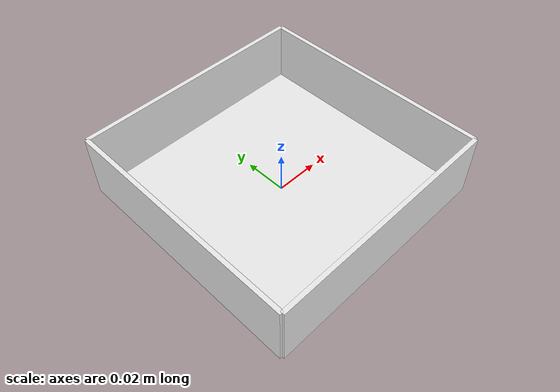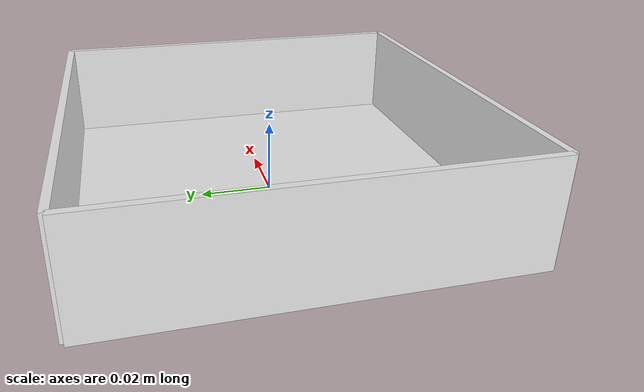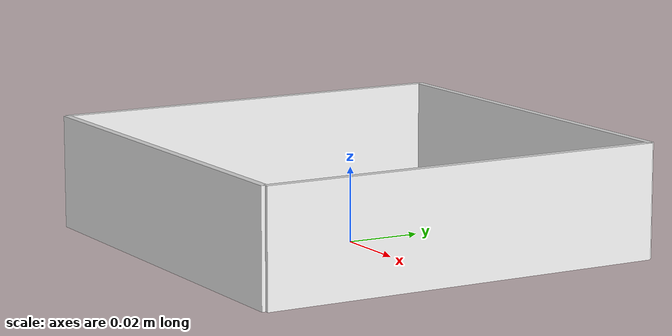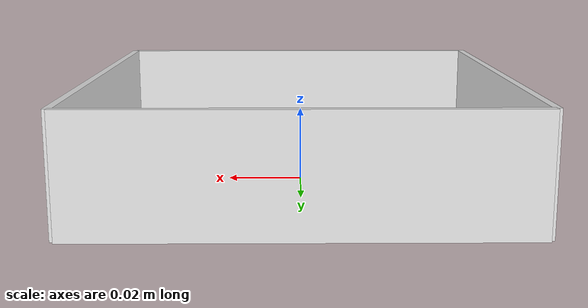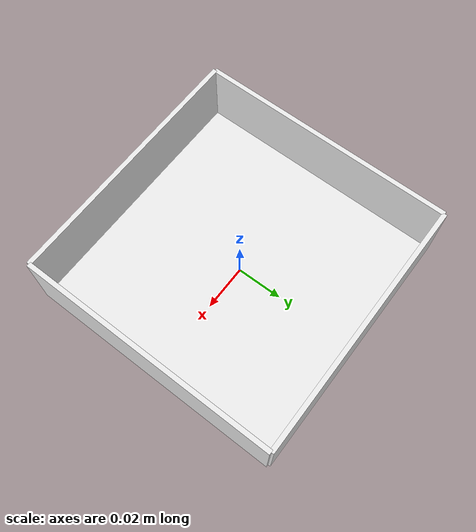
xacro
<?xml version='1.0'?>
<robot name ='workspace' xmlns:xacro="http://www.ros.org/wiki/xacro">

<xacro:property name="width1" value="0.11" />
<xacro:property name="width2" value="0.11" />
<xacro:property name="height1" value="0.03" />
<xacro:property name="height2" value="0.002" />

<link name="world"/>

<joint name = "joint_fix" type = "fixed">
  <parent link="world"/>
  <child link = "bottom"/>
</joint>

<link name ="bottom">
  <collision>
    <origin xyz="0 0 ${height2/2}" rpy="0 0 0"/>
    <geometry>
      <box size="${width1} ${width2} ${height2}"/>
    </geometry>
  </collision>

  <visual>
    <origin xyz="0 0 ${height2/2}" rpy="0 0 0"/>
    <geometry>
      <box size="${width1} ${width2} ${height2}"/>
    </geometry>
  </visual>

  <inertial>
    <origin xyz="0 0 ${height2/2}" rpy="0 0 0" />
    <mass value="0.05" />
    <inertia
      ixx="0.001" ixy="0.0"  ixz="0.0"
      iyy="0.001" iyz="0.0"
      izz="0.001" />
  </inertial>
</link>

<joint name = "left_wall" type = "fixed">
  <parent link="bottom"/>
  <child link = "left"/>
</joint>

<link name = "left">
  <collision>
    <origin xyz="-${width1/2} 0 ${height1/2}" rpy="0 0 0"/>
    <geometry>
      <box size="${height2} ${width2} ${height1}"/>
    </geometry>
  </collision>

  <visual>
    <origin xyz="-${width1/2} 0 ${height1/2}" rpy="0 0 0"/>
    <geometry>
      <box size="${height2} ${width2} ${height1}"/>
    </geometry>
  </visual>

  <inertial>
    <origin xyz="-${width1/2} 0 ${height1/2}" rpy="0 0 0" />
    <mass value="0.05" />
    <inertia
      ixx="0.001" ixy="0.0"  ixz="0.0"
      iyy="0.001" iyz="0.0"
      izz="0.001" />
  </inertial>
</link>

<joint name = "right_wall" type = "fixed">
  <parent link="bottom"/>
  <child link = "right"/>
</joint>

<link name="right">
  <collision>
    <origin xyz="${width1/2} 0 ${height1/2}" rpy="0 0 0"/>
    <geometry>
      <box size="${height2} ${width2} ${height1}"/>
    </geometry>
  </collision>

  <visual>
    <origin xyz="${width1/2} 0 ${height1/2}" rpy="0 0 0"/>
    <geometry>
      <box size="${height2} ${width2} ${height1}"/>
    </geometry>
  </visual>

  <inertial>
    <origin xyz="${width1/2} 0 ${height1/2}" rpy="0 0 0" />
    <mass value="0.05" />
    <inertia
      ixx="0.001" ixy="0.0"  ixz="0.0"
      iyy="0.001" iyz="0.0"
      izz="0.001" />
  </inertial>
</link>

<joint name = "back_wall" type = "fixed">
  <parent link="bottom"/>
  <child link = "back"/>
</joint>

<link name="back">
  <collision>
    <origin xyz="0 ${width1/2} ${height1/2}" rpy="0 0 0"/>
    <geometry>
      <box size="${width1} ${height2} ${height1}"/>
    </geometry>
  </collision>

  <visual>
    <origin xyz="0 ${width1/2} ${height1/2}" rpy="0 0 0"/>
    <geometry>
      <box size="${width1} ${height2} ${height1}"/>
    </geometry>
  </visual>

  <inertial>
    <origin xyz="0 ${width1/2} ${height1/2}" rpy="0 0 0" />
    <mass value="0.05" />
    <inertia
      ixx="0.001" ixy="0.0"  ixz="0.0"
      iyy="0.001" iyz="0.0"
      izz="0.001" />
  </inertial>
</link>

<joint name = "front_wall" type = "fixed">
  <parent link="bottom"/>
  <child link = "front"/>
</joint>

<link name="front">
  <collision>
    <origin xyz="0 -${width1/2} ${height1/2}" rpy= "0 0 0"/>
    <geometry>
      <box size="${width1} ${height2} ${height1}"/>
    </geometry>
  </collision>

  <visual>
    <origin xyz="0 -${width1/2} ${height1/2}" rpy="0 0 0"/>
    <geometry>
      <box size="${width1} ${height2} ${height1}"/>
    </geometry>
  </visual>

  <inertial>
    <origin xyz="0 -${width1/2} ${height1/2}" rpy="0 0 0"/>
    <mass value="0.05" />
    <inertia
      ixx="0.001" ixy="0.0"  ixz="0.0"
      iyy="0.001" iyz="0.0"
      izz="0.001" />
  </inertial>
</link>

<gazebo reference="bottom">
  <mu1>10</mu1>
  <mu2>10</mu2>
  <material>Gazebo/White</material>
  <static>true</static>
  <maxVel>0</maxVel>
  <minDepth>0.001</minDepth>
</gazebo>

<gazebo reference="right">
  <mu1>10</mu1>
  <mu2>10</mu2>
  <material>Gazebo/White</material>
  <static>true</static>
  <maxVel>0</maxVel>
  <minDepth>0.001</minDepth>
</gazebo>

<gazebo reference="left">
  <mu1>10</mu1>
  <mu2>10</mu2>
  <material>Gazebo/White</material>
  <static>true</static>
  <maxVel>0</maxVel>
  <minDepth>0.001</minDepth>
</gazebo>

<gazebo reference="back">
  <mu1>10</mu1>
  <mu2>10</mu2>
  <material>Gazebo/White</material>
  <static>true</static>
  <maxVel>0</maxVel>
  <minDepth>0.001</minDepth>
</gazebo>

<gazebo reference="front">
  <mu1>10</mu1>
  <mu2>10</mu2>
  <material>Gazebo/White</material>
</gazebo>

</robot>
